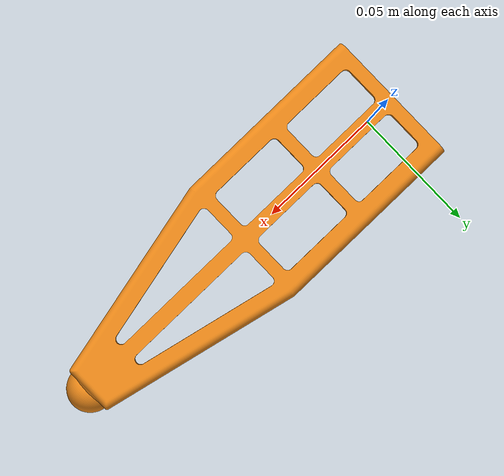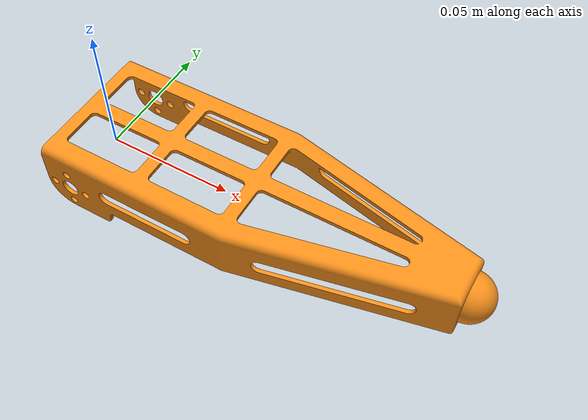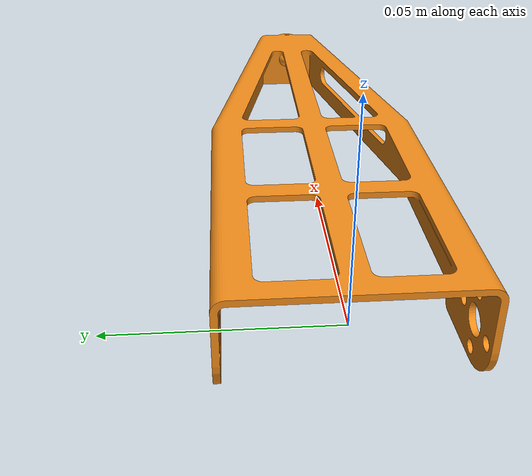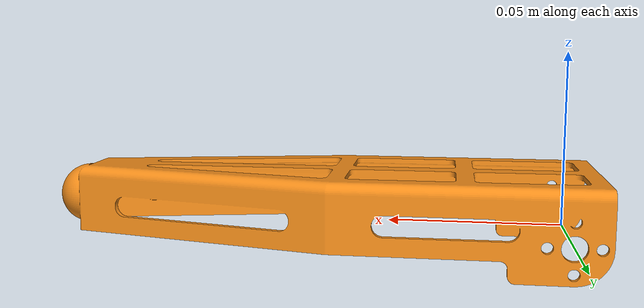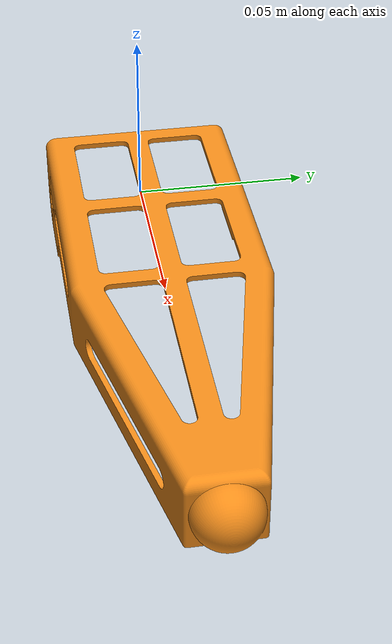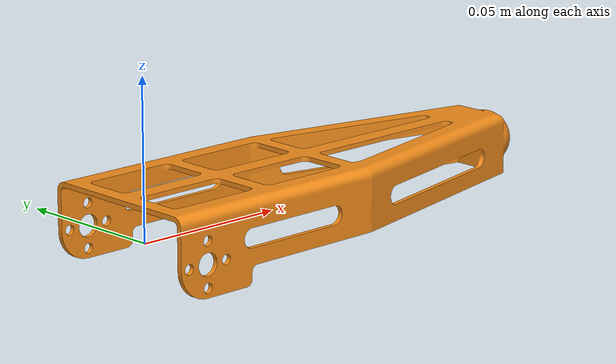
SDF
<?xml version="1.0" ?>

  <sdf version="1.5">
    <model name="usl_quadruped2_bicopter_tibia">
      <link name="base">
      <pose>0 0 0 0 0 0</pose>
      <inertial>
        <pose>0 0 0 0 0 0</pose>
        <mass>0.1</mass>
        <inertia>
          <ixx>0.001</ixx>
          <iyy>0.001</iyy>
          <izz>0.001</izz>
          <ixy>0</ixy>
          <ixz>0</ixz>
          <iyz>0</iyz>
        </inertia>
      </inertial>
      <collision name="base_collision">
        <pose>0 0 0  0 0 0</pose>
        <geometry>
          <mesh>
            <uri>model://usl_quadruped2_bicopter_tibia/meshes/tibia.dae</uri>
          </mesh>
        </geometry>
        <surface>
          <friction>
            <ode>
              <mu>1</mu>
              <mu2>1</mu2>
            </ode>
          </friction>
          <contact>
            <ode/>
          </contact>
        </surface>
      </collision>
      <visual name="base_visual">
        <geometry>
          <mesh>
            <uri>model://usl_quadruped2_bicopter_tibia/meshes/tibia.dae</uri>
          </mesh>
        </geometry>
        <material>
          <script>
            <name>Gazebo/Orange</name>
          </script>
        </material>
      </visual>
    </link>

  </model>
</sdf>
